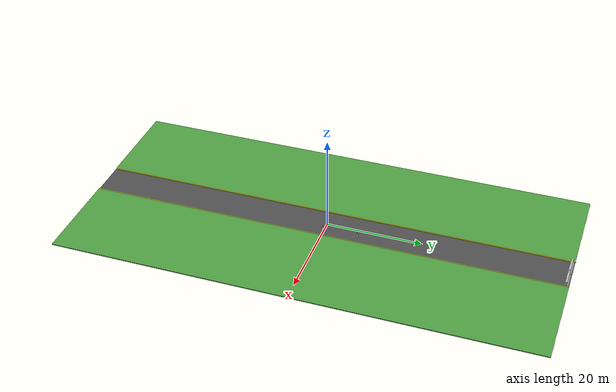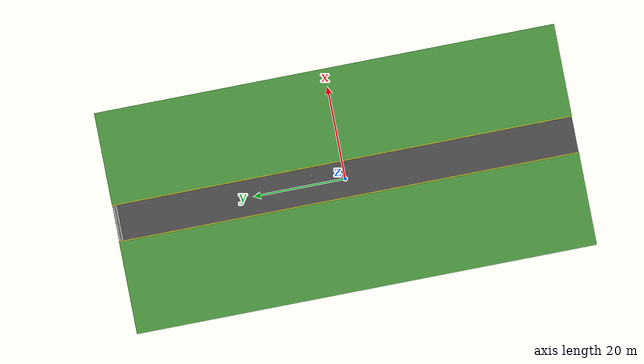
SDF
<sdf version="1.7">
 <world name="default">
  <model name="Construction Cone_0">
   <link name="link">
    <collision name="collision">
     <geometry>
      <mesh><scale>10 10 10</scale><uri>model://construction_cone/meshes/construction_cone.dae</uri></mesh>
     </geometry>
    </collision>
    <visual name="visual">
     <geometry>
      <mesh><scale>10 10 10</scale><uri>model://construction_cone/meshes/construction_cone.dae</uri></mesh>
     </geometry>
    </visual>
    <inertial>
     <inertia><ixx>1</ixx><ixy>0</ixy><ixz>0</ixz><iyy>1</iyy><iyz>0</iyz><izz>1</izz></inertia>
     <mass>1</mass>
    </inertial>
   </link>
   <pose>1.88666 6.95718 0.05 -0 2e-06 -2.18941</pose>
  </model>
  <model name="Construction Cone_0_clone">
   <link name="link">
    <collision name="collision">
     <geometry>
      <mesh><scale>10 10 10</scale><uri>model://construction_cone/meshes/construction_cone.dae</uri></mesh>
     </geometry>
    </collision>
    <visual name="visual">
     <geometry>
      <mesh><scale>10 10 10</scale><uri>model://construction_cone/meshes/construction_cone.dae</uri></mesh>
     </geometry>
    </visual>
    <inertial>
     <inertia><ixx>1</ixx><ixy>0</ixy><ixz>0</ixz><iyy>1</iyy><iyz>0</iyz><izz>1</izz></inertia>
     <mass>1</mass>
    </inertial>
   </link>
   <pose>1.7731 -0.446746 0.049992 4e-06 -3e-06 -2.03492</pose>
  </model>
  <model name="road_border">
   <link name="link_0">
    <inertial>
     <mass>1</mass>
     <inertia>
      <ixx>0.166667</ixx>
      <ixy>0</ixy>
      <ixz>0</ixz>
      <iyy>0.166667</iyy>
      <iyz>0</iyz>
      <izz>0.166667</izz>
     </inertia>
    </inertial>
    <pose>2e-06 0 -0 0 -0 0</pose>
    <visual name="visual">
     <geometry><box><size>0.2 100 0.2</size></box></geometry>
     <material>
      <lighting>1</lighting>
      <script><uri>file://media/materials/scripts/gazebo.material</uri><name>Gazebo/Yellow</name></script>
      <shader type="pixel"><normal_map>__default__</normal_map></shader>
      <ambient>0.255 0.239 0 1</ambient>
      <diffuse>0.7 0.7 0.7 1</diffuse>
      <specular>0.01 0.01 0.01 1</specular>
      <emissive>0 0 0 1</emissive>
     </material>
    </visual>
    <collision name="collision">
     <geometry><box><size>0.2 100 0.2</size></box></geometry>
     <surface>
      <friction>
       <ode><mu>1</mu><mu2>1</mu2><fdir1>0 0 0</fdir1><slip1>0</slip1><slip2>0</slip2></ode>
       <torsional>
        <coefficient>1</coefficient>
        <patch_radius>0</patch_radius>
        <surface_radius>0</surface_radius>
        <use_patch_radius>1</use_patch_radius>
        <ode><slip>0</slip></ode>
       </torsional>
      </friction>
      <bounce><restitution_coefficient>0</restitution_coefficient><threshold>1e+06</threshold></bounce>
      <contact>
       <collide_without_contact>0</collide_without_contact>
       <collide_without_contact_bitmask>1</collide_without_contact_bitmask>
       <collide_bitmask>1</collide_bitmask>
       <ode>
        <soft_cfm>0</soft_cfm>
        <soft_erp>0.2</soft_erp>
        <kp>1e+13</kp>
        <kd>1</kd>
        <max_vel>0.01</max_vel>
        <min_depth>0</min_depth>
       </ode>
       <bullet>
        <split_impulse>1</split_impulse>
        <split_impulse_penetration_threshold>-0.01</split_impulse_penetration_threshold>
        <soft_cfm>0</soft_cfm>
        <soft_erp>0.2</soft_erp>
        <kp>1e+13</kp>
        <kd>1</kd>
       </bullet>
      </contact>
     </surface>
    </collision>
   </link>
   <static>1</static>
   <pose>-3.94075 0.142475 0.15 0 -0 2e-05</pose>
  </model>
  <model name="road_border_clone">
   <link name="link_0">
    <inertial>
     <mass>1</mass>
     <inertia>
      <ixx>0.166667</ixx>
      <ixy>0</ixy>
      <ixz>0</ixz>
      <iyy>0.166667</iyy>
      <iyz>0</iyz>
      <izz>0.166667</izz>
     </inertia>
    </inertial>
    <pose>2e-06 0 -0 0 -0 0</pose>
    <visual name="visual">
     <geometry><box><size>0.2 100 0.2</size></box></geometry>
     <material>
      <lighting>1</lighting>
      <script><uri>file://media/materials/scripts/gazebo.material</uri><name>Gazebo/Yellow</name></script>
      <shader type="pixel"><normal_map>__default__</normal_map></shader>
      <ambient>0.255 0.239 0 1</ambient>
      <diffuse>0.7 0.7 0.7 1</diffuse>
      <specular>0.01 0.01 0.01 1</specular>
      <emissive>0 0 0 1</emissive>
     </material>
    </visual>
    <collision name="collision">
     <geometry><box><size>0.2 100 0.2</size></box></geometry>
     <surface>
      <friction>
       <ode><mu>1</mu><mu2>1</mu2><fdir1>0 0 0</fdir1><slip1>0</slip1><slip2>0</slip2></ode>
       <torsional>
        <coefficient>1</coefficient>
        <patch_radius>0</patch_radius>
        <surface_radius>0</surface_radius>
        <use_patch_radius>1</use_patch_radius>
        <ode><slip>0</slip></ode>
       </torsional>
      </friction>
      <bounce><restitution_coefficient>0</restitution_coefficient><threshold>1e+06</threshold></bounce>
      <contact>
       <collide_without_contact>0</collide_without_contact>
       <collide_without_contact_bitmask>1</collide_without_contact_bitmask>
       <collide_bitmask>1</collide_bitmask>
       <ode>
        <soft_cfm>0</soft_cfm>
        <soft_erp>0.2</soft_erp>
        <kp>1e+13</kp>
        <kd>1</kd>
        <max_vel>0.01</max_vel>
        <min_depth>0</min_depth>
       </ode>
       <bullet>
        <split_impulse>1</split_impulse>
        <split_impulse_penetration_threshold>-0.01</split_impulse_penetration_threshold>
        <soft_cfm>0</soft_cfm>
        <soft_erp>0.2</soft_erp>
        <kp>1e+13</kp>
        <kd>1</kd>
       </bullet>
      </contact>
     </surface>
    </collision>
   </link>
   <static>1</static>
   <pose>3.94 0 0.15 0 -0 0</pose>
  </model>
  <model name="asphalt_plane">
   <static>1</static>
   <link name="link">
    <collision name="collision"><geometry><box><size>20 100 0.1</size></box></geometry></collision>
    <visual name="visual">
     <cast_shadows>0</cast_shadows>
     <geometry><box><size>20 100 0.1</size></box></geometry>
     <material>
      <script>
       <uri>model://asphalt_plane/materials/scripts</uri>
       <uri>model://asphalt_plane/materials/textures</uri>
       <name>vrc/asphalt</name>
      </script>
     </material>
    </visual>
   </link>
  </model>
  <model name="grass_plane">
   <static>1</static>
   <link name="link">
    <visual name="visual">
     <geometry><box><size>20 100 0.2</size></box></geometry>
     <material>
      <script><uri>file://media/materials/scripts/gazebo.material</uri><name>Gazebo/Grass</name></script>
     </material>
    </visual>
    <collision name="collision"><geometry><box><size>20 100 0.2</size></box></geometry></collision>
   </link>
   <pose>14 0 0.15 0 -0 0</pose>
  </model>
  <model name="grass_plane_0">
   <static>1</static>
   <link name="link">
    <visual name="visual">
     <geometry><box><size>20 100 0.2</size></box></geometry>
     <material>
      <script><uri>file://media/materials/scripts/gazebo.material</uri><name>Gazebo/Grass</name></script>
     </material>
    </visual>
    <collision name="collision"><geometry><box><size>20 100 0.2</size></box></geometry></collision>
   </link>
   <pose>-14 0 0.15 0 -0 0</pose>
  </model>
  <model name="jersey_barrier">
   <static>1</static>
   <link name="link">
    <visual name="visual">
     <geometry><mesh><uri>model://jersey_barrier/meshes/jersey_barrier.dae</uri></mesh></geometry>
    </visual>
    <collision name="upright">
     <pose>0 0 0.5715 0 -0 0</pose>
     <geometry><box><size>4.06542 0.3063 1.143</size></box></geometry>
    </collision>
    <collision name="base">
     <pose>0 0 0.032258 0 -0 0</pose>
     <geometry><box><size>4.06542 0.8107 0.064516</size></box></geometry>
    </collision>
    <collision name="base2">
     <pose>0 0 0.1 0 -0 0</pose>
     <geometry><box><size>4.06542 0.65 0.1</size></box></geometry>
    </collision>
    <collision name="base3">
     <pose>0 0 0.2 0 -0 0</pose>
     <geometry><box><size>4.06542 0.5 0.1</size></box></geometry>
    </collision>
    <collision name="left-angle">
     <pose>0 -0.224 0.2401 0.9 -0 0</pose>
     <geometry><box><size>4.06542 0.5 0.064516</size></box></geometry>
    </collision>
    <collision name="right-angle">
     <pose>0 0.224 0.2401 -0.9 0 0</pose>
     <geometry><box><size>4.06542 0.5 0.064516</size></box></geometry>
    </collision>
   </link>
   <pose>-1.80444 49.428 0 0 -0 0</pose>
  </model>
  <model name="jersey_barrier_0">
   <static>1</static>
   <link name="link">
    <visual name="visual">
     <geometry><mesh><uri>model://jersey_barrier/meshes/jersey_barrier.dae</uri></mesh></geometry>
    </visual>
    <collision name="upright">
     <pose>0 0 0.5715 0 -0 0</pose>
     <geometry><box><size>4.06542 0.3063 1.143</size></box></geometry>
    </collision>
    <collision name="base">
     <pose>0 0 0.032258 0 -0 0</pose>
     <geometry><box><size>4.06542 0.8107 0.064516</size></box></geometry>
    </collision>
    <collision name="base2">
     <pose>0 0 0.1 0 -0 0</pose>
     <geometry><box><size>4.06542 0.65 0.1</size></box></geometry>
    </collision>
    <collision name="base3">
     <pose>0 0 0.2 0 -0 0</pose>
     <geometry><box><size>4.06542 0.5 0.1</size></box></geometry>
    </collision>
    <collision name="left-angle">
     <pose>0 -0.224 0.2401 0.9 -0 0</pose>
     <geometry><box><size>4.06542 0.5 0.064516</size></box></geometry>
    </collision>
    <collision name="right-angle">
     <pose>0 0.224 0.2401 -0.9 0 0</pose>
     <geometry><box><size>4.06542 0.5 0.064516</size></box></geometry>
    </collision>
   </link>
   <pose>1.78613 49.4153 0 0 -0 0</pose>
  </model>
 </world>
</sdf>
